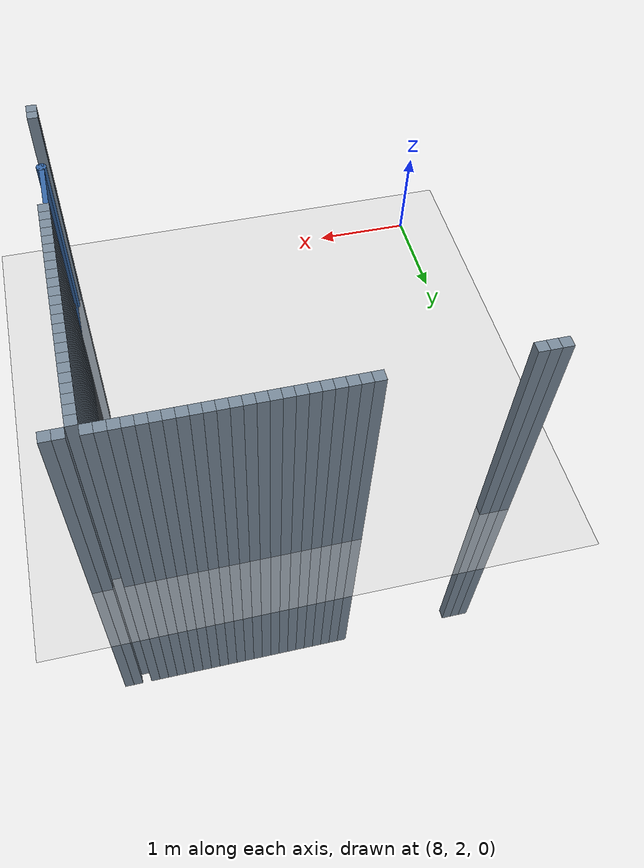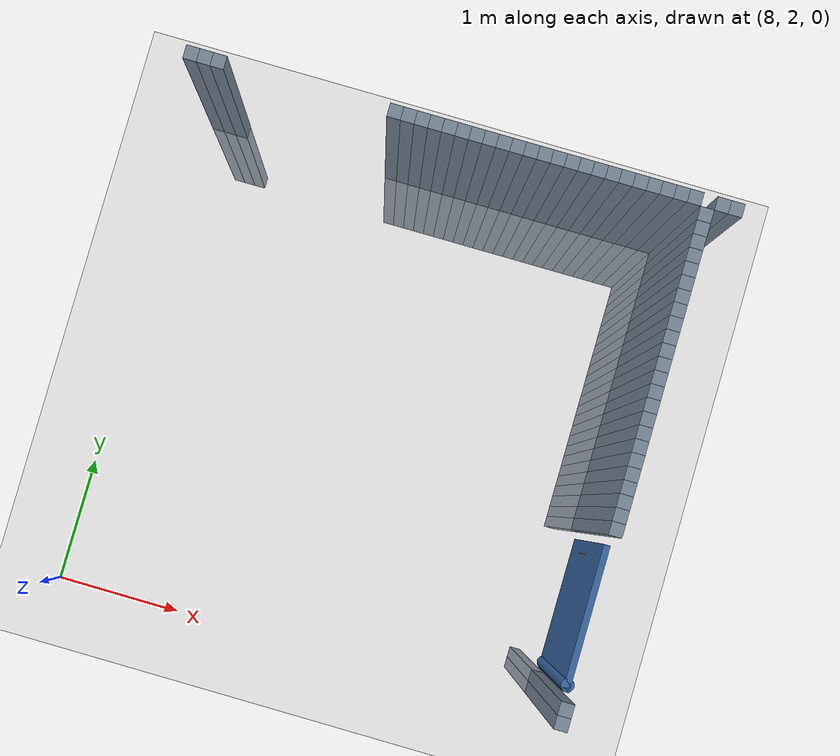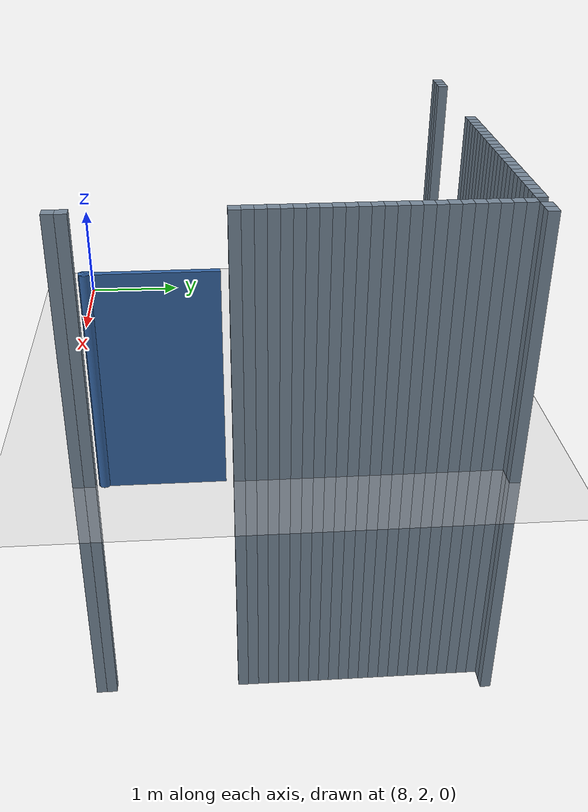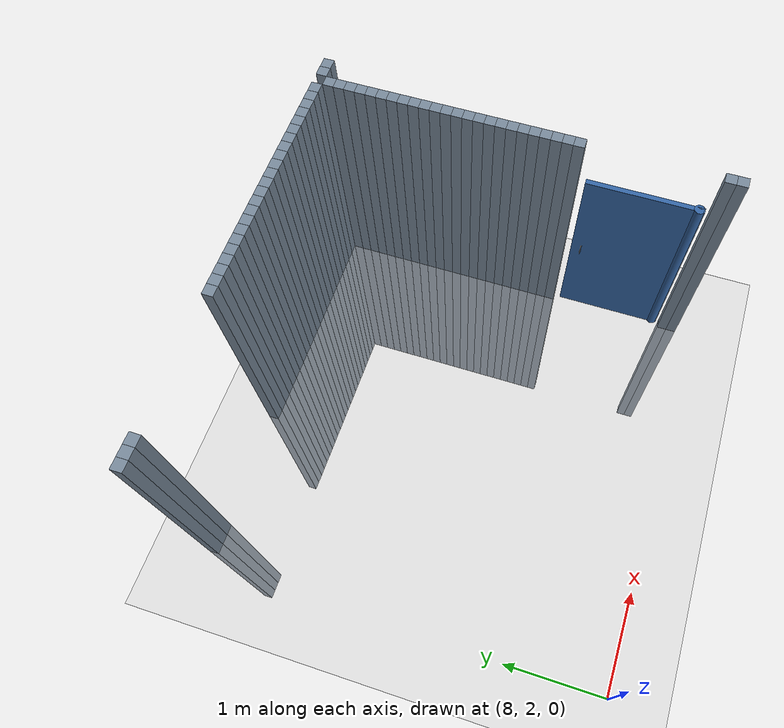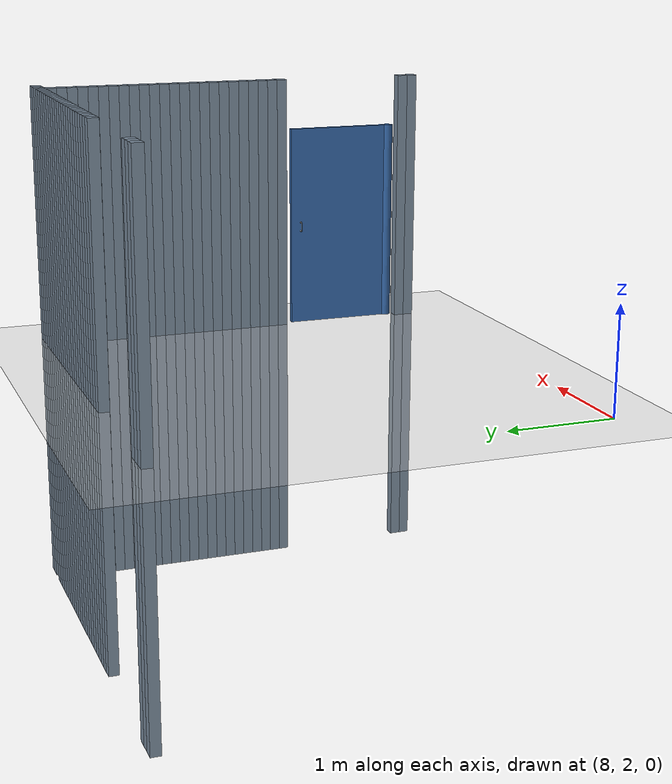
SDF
<sdf version="1.6">
 <world name="default">
  <model name="ground_plane">
   <static>1</static>
   <link name="link">
    <collision name="collision">
     <geometry><plane><normal>0 0 1</normal><size>100 100</size></plane></geometry>
     <surface><friction><ode><mu>100</mu><mu2>50</mu2></ode></friction></surface>
    </collision>
    <visual name="visual">
     <cast_shadows>0</cast_shadows>
     <geometry><plane><normal>0 0 1</normal><size>100 100</size></plane></geometry>
     <material>
      <script><uri>file://media/materials/scripts/gazebo.material</uri><name>Gazebo/Grey</name></script>
     </material>
    </visual>
   </link>
  </model>
  <model name="unit_cylinder_447">
   <static>1</static>
   <pose>8.2 6 0 0 -0 0</pose>
   <link name="link">
    <inertial>
     <mass>1</mass>
     <inertia><ixx>0.145833</ixx><ixy>0</ixy><ixz>0</ixz><iyy>0.145833</iyy><iyz>0</iyz><izz>0.125</izz></inertia>
    </inertial>
    <collision name="collision"><geometry><box><size>0.1 0.1 5</size></box></geometry></collision>
    <visual name="visual">
     <geometry><box><size>0.1 0.1 5</size></box></geometry>
     <material><ambient>0.466667 0.533333 0.6 1</ambient><diffuse>0.466667 0.533333 0.6 1</diffuse></material>
     <material>
      <script><name>Gazebo/Grey</name><uri>file://media/materials/scripts/gazebo.material</uri></script>
     </material>
    </visual>
   </link>
  </model>
  <model name="unit_cylinder_451">
   <static>1</static>
   <pose>8.3 6 0 0 -0 0</pose>
   <link name="link">
    <inertial>
     <mass>1</mass>
     <inertia><ixx>0.145833</ixx><ixy>0</ixy><ixz>0</ixz><iyy>0.145833</iyy><iyz>0</iyz><izz>0.125</izz></inertia>
    </inertial>
    <collision name="collision"><geometry><box><size>0.1 0.1 5</size></box></geometry></collision>
    <visual name="visual">
     <geometry><box><size>0.1 0.1 5</size></box></geometry>
     <material><ambient>0.466667 0.533333 0.6 1</ambient><diffuse>0.466667 0.533333 0.6 1</diffuse></material>
     <material>
      <script><name>Gazebo/Grey</name><uri>file://media/materials/scripts/gazebo.material</uri></script>
     </material>
    </visual>
   </link>
  </model>
  <model name="unit_cylinder_455">
   <static>1</static>
   <pose>8.4 6 0 0 -0 0</pose>
   <link name="link">
    <inertial>
     <mass>1</mass>
     <inertia><ixx>0.145833</ixx><ixy>0</ixy><ixz>0</ixz><iyy>0.145833</iyy><iyz>0</iyz><izz>0.125</izz></inertia>
    </inertial>
    <collision name="collision"><geometry><box><size>0.1 0.1 5</size></box></geometry></collision>
    <visual name="visual">
     <geometry><box><size>0.1 0.1 5</size></box></geometry>
     <material><ambient>0.466667 0.533333 0.6 1</ambient><diffuse>0.466667 0.533333 0.6 1</diffuse></material>
     <material>
      <script><name>Gazebo/Grey</name><uri>file://media/materials/scripts/gazebo.material</uri></script>
     </material>
    </visual>
   </link>
  </model>
  <model name="unit_cylinder_507">
   <static>1</static>
   <pose>9.7 6 0 0 -0 0</pose>
   <link name="link">
    <inertial>
     <mass>1</mass>
     <inertia><ixx>0.145833</ixx><ixy>0</ixy><ixz>0</ixz><iyy>0.145833</iyy><iyz>0</iyz><izz>0.125</izz></inertia>
    </inertial>
    <collision name="collision"><geometry><box><size>0.1 0.1 5</size></box></geometry></collision>
    <visual name="visual">
     <geometry><box><size>0.1 0.1 5</size></box></geometry>
     <material><ambient>0.466667 0.533333 0.6 1</ambient><diffuse>0.466667 0.533333 0.6 1</diffuse></material>
     <material>
      <script><name>Gazebo/Grey</name><uri>file://media/materials/scripts/gazebo.material</uri></script>
     </material>
    </visual>
   </link>
  </model>
  <model name="unit_cylinder_511">
   <static>1</static>
   <pose>9.8 6 0 0 -0 0</pose>
   <link name="link">
    <inertial>
     <mass>1</mass>
     <inertia><ixx>0.145833</ixx><ixy>0</ixy><ixz>0</ixz><iyy>0.145833</iyy><iyz>0</iyz><izz>0.125</izz></inertia>
    </inertial>
    <collision name="collision"><geometry><box><size>0.1 0.1 5</size></box></geometry></collision>
    <visual name="visual">
     <geometry><box><size>0.1 0.1 5</size></box></geometry>
     <material><ambient>0.466667 0.533333 0.6 1</ambient><diffuse>0.466667 0.533333 0.6 1</diffuse></material>
     <material>
      <script><name>Gazebo/Grey</name><uri>file://media/materials/scripts/gazebo.material</uri></script>
     </material>
    </visual>
   </link>
  </model>
  <model name="unit_cylinder_515">
   <static>1</static>
   <pose>9.9 6 0 0 -0 0</pose>
   <link name="link">
    <inertial>
     <mass>1</mass>
     <inertia><ixx>0.145833</ixx><ixy>0</ixy><ixz>0</ixz><iyy>0.145833</iyy><iyz>0</iyz><izz>0.125</izz></inertia>
    </inertial>
    <collision name="collision"><geometry><box><size>0.1 0.1 5</size></box></geometry></collision>
    <visual name="visual">
     <geometry><box><size>0.1 0.1 5</size></box></geometry>
     <material><ambient>0.466667 0.533333 0.6 1</ambient><diffuse>0.466667 0.533333 0.6 1</diffuse></material>
     <material>
      <script><name>Gazebo/Grey</name><uri>file://media/materials/scripts/gazebo.material</uri></script>
     </material>
    </visual>
   </link>
  </model>
  <model name="unit_cylinder_519">
   <static>1</static>
   <pose>10 6 0 0 -0 0</pose>
   <link name="link">
    <inertial>
     <mass>1</mass>
     <inertia><ixx>0.145833</ixx><ixy>0</ixy><ixz>0</ixz><iyy>0.145833</iyy><iyz>0</iyz><izz>0.125</izz></inertia>
    </inertial>
    <collision name="collision"><geometry><box><size>0.1 0.1 5</size></box></geometry></collision>
    <visual name="visual">
     <geometry><box><size>0.1 0.1 5</size></box></geometry>
     <material><ambient>0.466667 0.533333 0.6 1</ambient><diffuse>0.466667 0.533333 0.6 1</diffuse></material>
     <material>
      <script><name>Gazebo/Grey</name><uri>file://media/materials/scripts/gazebo.material</uri></script>
     </material>
    </visual>
   </link>
  </model>
  <model name="unit_cylinder_523">
   <static>1</static>
   <pose>10.1 6 0 0 -0 0</pose>
   <link name="link">
    <inertial>
     <mass>1</mass>
     <inertia><ixx>0.145833</ixx><ixy>0</ixy><ixz>0</ixz><iyy>0.145833</iyy><iyz>0</iyz><izz>0.125</izz></inertia>
    </inertial>
    <collision name="collision"><geometry><box><size>0.1 0.1 5</size></box></geometry></collision>
    <visual name="visual">
     <geometry><box><size>0.1 0.1 5</size></box></geometry>
     <material><ambient>0.466667 0.533333 0.6 1</ambient><diffuse>0.466667 0.533333 0.6 1</diffuse></material>
     <material>
      <script><name>Gazebo/Grey</name><uri>file://media/materials/scripts/gazebo.material</uri></script>
     </material>
    </visual>
   </link>
  </model>
  <model name="unit_cylinder_527">
   <static>1</static>
   <pose>10.2 6 0 0 -0 0</pose>
   <link name="link">
    <inertial>
     <mass>1</mass>
     <inertia><ixx>0.145833</ixx><ixy>0</ixy><ixz>0</ixz><iyy>0.145833</iyy><iyz>0</iyz><izz>0.125</izz></inertia>
    </inertial>
    <collision name="collision"><geometry><box><size>0.1 0.1 5</size></box></geometry></collision>
    <visual name="visual">
     <geometry><box><size>0.1 0.1 5</size></box></geometry>
     <material><ambient>0.466667 0.533333 0.6 1</ambient><diffuse>0.466667 0.533333 0.6 1</diffuse></material>
     <material>
      <script><name>Gazebo/Grey</name><uri>file://media/materials/scripts/gazebo.material</uri></script>
     </material>
    </visual>
   </link>
  </model>
  <model name="unit_cylinder_531">
   <static>1</static>
   <pose>10.3 6 0 0 -0 0</pose>
   <link name="link">
    <inertial>
     <mass>1</mass>
     <inertia><ixx>0.145833</ixx><ixy>0</ixy><ixz>0</ixz><iyy>0.145833</iyy><iyz>0</iyz><izz>0.125</izz></inertia>
    </inertial>
    <collision name="collision"><geometry><box><size>0.1 0.1 5</size></box></geometry></collision>
    <visual name="visual">
     <geometry><box><size>0.1 0.1 5</size></box></geometry>
     <material><ambient>0.466667 0.533333 0.6 1</ambient><diffuse>0.466667 0.533333 0.6 1</diffuse></material>
     <material>
      <script><name>Gazebo/Grey</name><uri>file://media/materials/scripts/gazebo.material</uri></script>
     </material>
    </visual>
   </link>
  </model>
  <model name="unit_cylinder_535">
   <static>1</static>
   <pose>10.4 6 0 0 -0 0</pose>
   <link name="link">
    <inertial>
     <mass>1</mass>
     <inertia><ixx>0.145833</ixx><ixy>0</ixy><ixz>0</ixz><iyy>0.145833</iyy><iyz>0</iyz><izz>0.125</izz></inertia>
    </inertial>
    <collision name="collision"><geometry><box><size>0.1 0.1 5</size></box></geometry></collision>
    <visual name="visual">
     <geometry><box><size>0.1 0.1 5</size></box></geometry>
     <material><ambient>0.466667 0.533333 0.6 1</ambient><diffuse>0.466667 0.533333 0.6 1</diffuse></material>
     <material>
      <script><name>Gazebo/Grey</name><uri>file://media/materials/scripts/gazebo.material</uri></script>
     </material>
    </visual>
   </link>
  </model>
  <model name="unit_cylinder_539">
   <static>1</static>
   <pose>10.5 6 0 0 -0 0</pose>
   <link name="link">
    <inertial>
     <mass>1</mass>
     <inertia><ixx>0.145833</ixx><ixy>0</ixy><ixz>0</ixz><iyy>0.145833</iyy><iyz>0</iyz><izz>0.125</izz></inertia>
    </inertial>
    <collision name="collision"><geometry><box><size>0.1 0.1 5</size></box></geometry></collision>
    <visual name="visual">
     <geometry><box><size>0.1 0.1 5</size></box></geometry>
     <material><ambient>0.466667 0.533333 0.6 1</ambient><diffuse>0.466667 0.533333 0.6 1</diffuse></material>
     <material>
      <script><name>Gazebo/Grey</name><uri>file://media/materials/scripts/gazebo.material</uri></script>
     </material>
    </visual>
   </link>
  </model>
  <model name="unit_cylinder_543">
   <static>1</static>
   <pose>10.6 6 0 0 -0 0</pose>
   <link name="link">
    <inertial>
     <mass>1</mass>
     <inertia><ixx>0.145833</ixx><ixy>0</ixy><ixz>0</ixz><iyy>0.145833</iyy><iyz>0</iyz><izz>0.125</izz></inertia>
    </inertial>
    <collision name="collision"><geometry><box><size>0.1 0.1 5</size></box></geometry></collision>
    <visual name="visual">
     <geometry><box><size>0.1 0.1 5</size></box></geometry>
     <material><ambient>0.466667 0.533333 0.6 1</ambient><diffuse>0.466667 0.533333 0.6 1</diffuse></material>
     <material>
      <script><name>Gazebo/Grey</name><uri>file://media/materials/scripts/gazebo.material</uri></script>
     </material>
    </visual>
   </link>
  </model>
  <model name="unit_cylinder_547">
   <static>1</static>
   <pose>10.7 6 0 0 -0 0</pose>
   <link name="link">
    <inertial>
     <mass>1</mass>
     <inertia><ixx>0.145833</ixx><ixy>0</ixy><ixz>0</ixz><iyy>0.145833</iyy><iyz>0</iyz><izz>0.125</izz></inertia>
    </inertial>
    <collision name="collision"><geometry><box><size>0.1 0.1 5</size></box></geometry></collision>
    <visual name="visual">
     <geometry><box><size>0.1 0.1 5</size></box></geometry>
     <material><ambient>0.466667 0.533333 0.6 1</ambient><diffuse>0.466667 0.533333 0.6 1</diffuse></material>
     <material>
      <script><name>Gazebo/Grey</name><uri>file://media/materials/scripts/gazebo.material</uri></script>
     </material>
    </visual>
   </link>
  </model>
  <model name="unit_cylinder_551">
   <static>1</static>
   <pose>10.8 6 0 0 -0 0</pose>
   <link name="link">
    <inertial>
     <mass>1</mass>
     <inertia><ixx>0.145833</ixx><ixy>0</ixy><ixz>0</ixz><iyy>0.145833</iyy><iyz>0</iyz><izz>0.125</izz></inertia>
    </inertial>
    <collision name="collision"><geometry><box><size>0.1 0.1 5</size></box></geometry></collision>
    <visual name="visual">
     <geometry><box><size>0.1 0.1 5</size></box></geometry>
     <material><ambient>0.466667 0.533333 0.6 1</ambient><diffuse>0.466667 0.533333 0.6 1</diffuse></material>
     <material>
      <script><name>Gazebo/Grey</name><uri>file://media/materials/scripts/gazebo.material</uri></script>
     </material>
    </visual>
   </link>
  </model>
  <model name="unit_cylinder_555">
   <static>1</static>
   <pose>10.9 6 0 0 -0 0</pose>
   <link name="link">
    <inertial>
     <mass>1</mass>
     <inertia><ixx>0.145833</ixx><ixy>0</ixy><ixz>0</ixz><iyy>0.145833</iyy><iyz>0</iyz><izz>0.125</izz></inertia>
    </inertial>
    <collision name="collision"><geometry><box><size>0.1 0.1 5</size></box></geometry></collision>
    <visual name="visual">
     <geometry><box><size>0.1 0.1 5</size></box></geometry>
     <material><ambient>0.466667 0.533333 0.6 1</ambient><diffuse>0.466667 0.533333 0.6 1</diffuse></material>
     <material>
      <script><name>Gazebo/Grey</name><uri>file://media/materials/scripts/gazebo.material</uri></script>
     </material>
    </visual>
   </link>
  </model>
  <model name="unit_cylinder_559">
   <static>1</static>
   <pose>11 6 0 0 -0 0</pose>
   <link name="link">
    <inertial>
     <mass>1</mass>
     <inertia><ixx>0.145833</ixx><ixy>0</ixy><ixz>0</ixz><iyy>0.145833</iyy><iyz>0</iyz><izz>0.125</izz></inertia>
    </inertial>
    <collision name="collision"><geometry><box><size>0.1 0.1 5</size></box></geometry></collision>
    <visual name="visual">
     <geometry><box><size>0.1 0.1 5</size></box></geometry>
     <material><ambient>0.466667 0.533333 0.6 1</ambient><diffuse>0.466667 0.533333 0.6 1</diffuse></material>
     <material>
      <script><name>Gazebo/Grey</name><uri>file://media/materials/scripts/gazebo.material</uri></script>
     </material>
    </visual>
   </link>
  </model>
  <model name="unit_cylinder_563">
   <static>1</static>
   <pose>11.1 6 0 0 -0 0</pose>
   <link name="link">
    <inertial>
     <mass>1</mass>
     <inertia><ixx>0.145833</ixx><ixy>0</ixy><ixz>0</ixz><iyy>0.145833</iyy><iyz>0</iyz><izz>0.125</izz></inertia>
    </inertial>
    <collision name="collision"><geometry><box><size>0.1 0.1 5</size></box></geometry></collision>
    <visual name="visual">
     <geometry><box><size>0.1 0.1 5</size></box></geometry>
     <material><ambient>0.466667 0.533333 0.6 1</ambient><diffuse>0.466667 0.533333 0.6 1</diffuse></material>
     <material>
      <script><name>Gazebo/Grey</name><uri>file://media/materials/scripts/gazebo.material</uri></script>
     </material>
    </visual>
   </link>
  </model>
  <model name="unit_cylinder_567">
   <static>1</static>
   <pose>11.2 6 0 0 -0 0</pose>
   <link name="link">
    <inertial>
     <mass>1</mass>
     <inertia><ixx>0.145833</ixx><ixy>0</ixy><ixz>0</ixz><iyy>0.145833</iyy><iyz>0</iyz><izz>0.125</izz></inertia>
    </inertial>
    <collision name="collision"><geometry><box><size>0.1 0.1 5</size></box></geometry></collision>
    <visual name="visual">
     <geometry><box><size>0.1 0.1 5</size></box></geometry>
     <material><ambient>0.466667 0.533333 0.6 1</ambient><diffuse>0.466667 0.533333 0.6 1</diffuse></material>
     <material>
      <script><name>Gazebo/Grey</name><uri>file://media/materials/scripts/gazebo.material</uri></script>
     </material>
    </visual>
   </link>
  </model>
  <model name="unit_cylinder_571">
   <static>1</static>
   <pose>11.3 6 0 0 -0 0</pose>
   <link name="link">
    <inertial>
     <mass>1</mass>
     <inertia><ixx>0.145833</ixx><ixy>0</ixy><ixz>0</ixz><iyy>0.145833</iyy><iyz>0</iyz><izz>0.125</izz></inertia>
    </inertial>
    <collision name="collision"><geometry><box><size>0.1 0.1 5</size></box></geometry></collision>
    <visual name="visual">
     <geometry><box><size>0.1 0.1 5</size></box></geometry>
     <material><ambient>0.466667 0.533333 0.6 1</ambient><diffuse>0.466667 0.533333 0.6 1</diffuse></material>
     <material>
      <script><name>Gazebo/Grey</name><uri>file://media/materials/scripts/gazebo.material</uri></script>
     </material>
    </visual>
   </link>
  </model>
  <model name="unit_cylinder_575">
   <static>1</static>
   <pose>11.4 6 0 0 -0 0</pose>
   <link name="link">
    <inertial>
     <mass>1</mass>
     <inertia><ixx>0.145833</ixx><ixy>0</ixy><ixz>0</ixz><iyy>0.145833</iyy><iyz>0</iyz><izz>0.125</izz></inertia>
    </inertial>
    <collision name="collision"><geometry><box><size>0.1 0.1 5</size></box></geometry></collision>
    <visual name="visual">
     <geometry><box><size>0.1 0.1 5</size></box></geometry>
     <material><ambient>0.466667 0.533333 0.6 1</ambient><diffuse>0.466667 0.533333 0.6 1</diffuse></material>
     <material>
      <script><name>Gazebo/Grey</name><uri>file://media/materials/scripts/gazebo.material</uri></script>
     </material>
    </visual>
   </link>
  </model>
  <model name="unit_cylinder_579">
   <static>1</static>
   <pose>11.5 6 0 0 -0 0</pose>
   <link name="link">
    <inertial>
     <mass>1</mass>
     <inertia><ixx>0.145833</ixx><ixy>0</ixy><ixz>0</ixz><iyy>0.145833</iyy><iyz>0</iyz><izz>0.125</izz></inertia>
    </inertial>
    <collision name="collision"><geometry><box><size>0.1 0.1 5</size></box></geometry></collision>
    <visual name="visual">
     <geometry><box><size>0.1 0.1 5</size></box></geometry>
     <material><ambient>0.466667 0.533333 0.6 1</ambient><diffuse>0.466667 0.533333 0.6 1</diffuse></material>
     <material>
      <script><name>Gazebo/Grey</name><uri>file://media/materials/scripts/gazebo.material</uri></script>
     </material>
    </visual>
   </link>
  </model>
  <model name="unit_cylinder_583">
   <static>1</static>
   <pose>11.6 6 0 0 -0 0</pose>
   <link name="link">
    <inertial>
     <mass>1</mass>
     <inertia><ixx>0.145833</ixx><ixy>0</ixy><ixz>0</ixz><iyy>0.145833</iyy><iyz>0</iyz><izz>0.125</izz></inertia>
    </inertial>
    <collision name="collision"><geometry><box><size>0.1 0.1 5</size></box></geometry></collision>
    <visual name="visual">
     <geometry><box><size>0.1 0.1 5</size></box></geometry>
     <material><ambient>0.466667 0.533333 0.6 1</ambient><diffuse>0.466667 0.533333 0.6 1</diffuse></material>
     <material>
      <script><name>Gazebo/Grey</name><uri>file://media/materials/scripts/gazebo.material</uri></script>
     </material>
    </visual>
   </link>
  </model>
  <model name="unit_cylinder_587">
   <static>1</static>
   <pose>11.7 6 0 0 -0 0</pose>
   <link name="link">
    <inertial>
     <mass>1</mass>
     <inertia><ixx>0.145833</ixx><ixy>0</ixy><ixz>0</ixz><iyy>0.145833</iyy><iyz>0</iyz><izz>0.125</izz></inertia>
    </inertial>
    <collision name="collision"><geometry><box><size>0.1 0.1 5</size></box></geometry></collision>
    <visual name="visual">
     <geometry><box><size>0.1 0.1 5</size></box></geometry>
     <material><ambient>0.466667 0.533333 0.6 1</ambient><diffuse>0.466667 0.533333 0.6 1</diffuse></material>
     <material>
      <script><name>Gazebo/Grey</name><uri>file://media/materials/scripts/gazebo.material</uri></script>
     </material>
    </visual>
   </link>
  </model>
  <model name="unit_cylinder_591">
   <static>1</static>
   <pose>11.8 6 0 0 -0 0</pose>
   <link name="link">
    <inertial>
     <mass>1</mass>
     <inertia><ixx>0.145833</ixx><ixy>0</ixy><ixz>0</ixz><iyy>0.145833</iyy><iyz>0</iyz><izz>0.125</izz></inertia>
    </inertial>
    <collision name="collision"><geometry><box><size>0.1 0.1 5</size></box></geometry></collision>
    <visual name="visual">
     <geometry><box><size>0.1 0.1 5</size></box></geometry>
     <material><ambient>0.466667 0.533333 0.6 1</ambient><diffuse>0.466667 0.533333 0.6 1</diffuse></material>
     <material>
      <script><name>Gazebo/Grey</name><uri>file://media/materials/scripts/gazebo.material</uri></script>
     </material>
    </visual>
   </link>
  </model>
  <model name="unit_cylinder_595">
   <static>1</static>
   <pose>11.9 6 0 0 -0 0</pose>
   <link name="link">
    <inertial>
     <mass>1</mass>
     <inertia><ixx>0.145833</ixx><ixy>0</ixy><ixz>0</ixz><iyy>0.145833</iyy><iyz>0</iyz><izz>0.125</izz></inertia>
    </inertial>
    <collision name="collision"><geometry><box><size>0.1 0.1 5</size></box></geometry></collision>
    <visual name="visual">
     <geometry><box><size>0.1 0.1 5</size></box></geometry>
     <material><ambient>0.466667 0.533333 0.6 1</ambient><diffuse>0.466667 0.533333 0.6 1</diffuse></material>
     <material>
      <script><name>Gazebo/Grey</name><uri>file://media/materials/scripts/gazebo.material</uri></script>
     </material>
    </visual>
   </link>
  </model>
  <model name="unit_cylinder_620">
   <static>1</static>
   <pose>12 2.2 0 0 -0 0</pose>
   <link name="link">
    <inertial>
     <mass>1</mass>
     <inertia><ixx>0.145833</ixx><ixy>0</ixy><ixz>0</ixz><iyy>0.145833</iyy><iyz>0</iyz><izz>0.125</izz></inertia>
    </inertial>
    <collision name="collision"><geometry><box><size>0.1 0.1 5</size></box></geometry></collision>
    <visual name="visual">
     <geometry><box><size>0.1 0.1 5</size></box></geometry>
     <material><ambient>0.466667 0.533333 0.6 1</ambient><diffuse>0.466667 0.533333 0.6 1</diffuse></material>
     <material>
      <script><name>Gazebo/Grey</name><uri>file://media/materials/scripts/gazebo.material</uri></script>
     </material>
    </visual>
   </link>
  </model>
  <model name="unit_cylinder_621">
   <static>1</static>
   <pose>12 2.3 0 0 -0 0</pose>
   <link name="link">
    <inertial>
     <mass>1</mass>
     <inertia><ixx>0.145833</ixx><ixy>0</ixy><ixz>0</ixz><iyy>0.145833</iyy><iyz>0</iyz><izz>0.125</izz></inertia>
    </inertial>
    <collision name="collision"><geometry><box><size>0.1 0.1 5</size></box></geometry></collision>
    <visual name="visual">
     <geometry><box><size>0.1 0.1 5</size></box></geometry>
     <material><ambient>0.466667 0.533333 0.6 1</ambient><diffuse>0.466667 0.533333 0.6 1</diffuse></material>
     <material>
      <script><name>Gazebo/Grey</name><uri>file://media/materials/scripts/gazebo.material</uri></script>
     </material>
    </visual>
   </link>
  </model>
  <model name="unit_cylinder_634">
   <static>1</static>
   <pose>12 3.6 0 0 -0 0</pose>
   <link name="link">
    <inertial>
     <mass>1</mass>
     <inertia><ixx>0.145833</ixx><ixy>0</ixy><ixz>0</ixz><iyy>0.145833</iyy><iyz>0</iyz><izz>0.125</izz></inertia>
    </inertial>
    <collision name="collision"><geometry><box><size>0.1 0.1 5</size></box></geometry></collision>
    <visual name="visual">
     <geometry><box><size>0.1 0.1 5</size></box></geometry>
     <material><ambient>0.466667 0.533333 0.6 1</ambient><diffuse>0.466667 0.533333 0.6 1</diffuse></material>
     <material>
      <script><name>Gazebo/Grey</name><uri>file://media/materials/scripts/gazebo.material</uri></script>
     </material>
    </visual>
   </link>
  </model>
  <model name="unit_cylinder_635">
   <static>1</static>
   <pose>12 3.7 0 0 -0 0</pose>
   <link name="link">
    <inertial>
     <mass>1</mass>
     <inertia><ixx>0.145833</ixx><ixy>0</ixy><ixz>0</ixz><iyy>0.145833</iyy><iyz>0</iyz><izz>0.125</izz></inertia>
    </inertial>
    <collision name="collision"><geometry><box><size>0.1 0.1 5</size></box></geometry></collision>
    <visual name="visual">
     <geometry><box><size>0.1 0.1 5</size></box></geometry>
     <material><ambient>0.466667 0.533333 0.6 1</ambient><diffuse>0.466667 0.533333 0.6 1</diffuse></material>
     <material>
      <script><name>Gazebo/Grey</name><uri>file://media/materials/scripts/gazebo.material</uri></script>
     </material>
    </visual>
   </link>
  </model>
  <model name="unit_cylinder_636">
   <static>1</static>
   <pose>12 3.8 0 0 -0 0</pose>
   <link name="link">
    <inertial>
     <mass>1</mass>
     <inertia><ixx>0.145833</ixx><ixy>0</ixy><ixz>0</ixz><iyy>0.145833</iyy><iyz>0</iyz><izz>0.125</izz></inertia>
    </inertial>
    <collision name="collision"><geometry><box><size>0.1 0.1 5</size></box></geometry></collision>
    <visual name="visual">
     <geometry><box><size>0.1 0.1 5</size></box></geometry>
     <material><ambient>0.466667 0.533333 0.6 1</ambient><diffuse>0.466667 0.533333 0.6 1</diffuse></material>
     <material>
      <script><name>Gazebo/Grey</name><uri>file://media/materials/scripts/gazebo.material</uri></script>
     </material>
    </visual>
   </link>
  </model>
  <model name="unit_cylinder_637">
   <static>1</static>
   <pose>12 3.9 0 0 -0 0</pose>
   <link name="link">
    <inertial>
     <mass>1</mass>
     <inertia><ixx>0.145833</ixx><ixy>0</ixy><ixz>0</ixz><iyy>0.145833</iyy><iyz>0</iyz><izz>0.125</izz></inertia>
    </inertial>
    <collision name="collision"><geometry><box><size>0.1 0.1 5</size></box></geometry></collision>
    <visual name="visual">
     <geometry><box><size>0.1 0.1 5</size></box></geometry>
     <material><ambient>0.466667 0.533333 0.6 1</ambient><diffuse>0.466667 0.533333 0.6 1</diffuse></material>
     <material>
      <script><name>Gazebo/Grey</name><uri>file://media/materials/scripts/gazebo.material</uri></script>
     </material>
    </visual>
   </link>
  </model>
  <model name="unit_cylinder_638">
   <static>1</static>
   <pose>12 4 0 0 -0 0</pose>
   <link name="link">
    <inertial>
     <mass>1</mass>
     <inertia><ixx>0.145833</ixx><ixy>0</ixy><ixz>0</ixz><iyy>0.145833</iyy><iyz>0</iyz><izz>0.125</izz></inertia>
    </inertial>
    <collision name="collision"><geometry><box><size>0.1 0.1 5</size></box></geometry></collision>
    <visual name="visual">
     <geometry><box><size>0.1 0.1 5</size></box></geometry>
     <material><ambient>0.466667 0.533333 0.6 1</ambient><diffuse>0.466667 0.533333 0.6 1</diffuse></material>
     <material>
      <script><name>Gazebo/Grey</name><uri>file://media/materials/scripts/gazebo.material</uri></script>
     </material>
    </visual>
   </link>
  </model>
  <model name="unit_cylinder_639">
   <static>1</static>
   <pose>12 4.1 0 0 -0 0</pose>
   <link name="link">
    <inertial>
     <mass>1</mass>
     <inertia><ixx>0.145833</ixx><ixy>0</ixy><ixz>0</ixz><iyy>0.145833</iyy><iyz>0</iyz><izz>0.125</izz></inertia>
    </inertial>
    <collision name="collision"><geometry><box><size>0.1 0.1 5</size></box></geometry></collision>
    <visual name="visual">
     <geometry><box><size>0.1 0.1 5</size></box></geometry>
     <material><ambient>0.466667 0.533333 0.6 1</ambient><diffuse>0.466667 0.533333 0.6 1</diffuse></material>
     <material>
      <script><name>Gazebo/Grey</name><uri>file://media/materials/scripts/gazebo.material</uri></script>
     </material>
    </visual>
   </link>
  </model>
  <model name="unit_cylinder_640">
   <static>1</static>
   <pose>12 4.2 0 0 -0 0</pose>
   <link name="link">
    <inertial>
     <mass>1</mass>
     <inertia><ixx>0.145833</ixx><ixy>0</ixy><ixz>0</ixz><iyy>0.145833</iyy><iyz>0</iyz><izz>0.125</izz></inertia>
    </inertial>
    <collision name="collision"><geometry><box><size>0.1 0.1 5</size></box></geometry></collision>
    <visual name="visual">
     <geometry><box><size>0.1 0.1 5</size></box></geometry>
     <material><ambient>0.466667 0.533333 0.6 1</ambient><diffuse>0.466667 0.533333 0.6 1</diffuse></material>
     <material>
      <script><name>Gazebo/Grey</name><uri>file://media/materials/scripts/gazebo.material</uri></script>
     </material>
    </visual>
   </link>
  </model>
  <model name="unit_cylinder_641">
   <static>1</static>
   <pose>12 4.3 0 0 -0 0</pose>
   <link name="link">
    <inertial>
     <mass>1</mass>
     <inertia><ixx>0.145833</ixx><ixy>0</ixy><ixz>0</ixz><iyy>0.145833</iyy><iyz>0</iyz><izz>0.125</izz></inertia>
    </inertial>
    <collision name="collision"><geometry><box><size>0.1 0.1 5</size></box></geometry></collision>
    <visual name="visual">
     <geometry><box><size>0.1 0.1 5</size></box></geometry>
     <material><ambient>0.466667 0.533333 0.6 1</ambient><diffuse>0.466667 0.533333 0.6 1</diffuse></material>
     <material>
      <script><name>Gazebo/Grey</name><uri>file://media/materials/scripts/gazebo.material</uri></script>
     </material>
    </visual>
   </link>
  </model>
  <model name="unit_cylinder_642">
   <static>1</static>
   <pose>12 4.4 0 0 -0 0</pose>
   <link name="link">
    <inertial>
     <mass>1</mass>
     <inertia><ixx>0.145833</ixx><ixy>0</ixy><ixz>0</ixz><iyy>0.145833</iyy><iyz>0</iyz><izz>0.125</izz></inertia>
    </inertial>
    <collision name="collision"><geometry><box><size>0.1 0.1 5</size></box></geometry></collision>
    <visual name="visual">
     <geometry><box><size>0.1 0.1 5</size></box></geometry>
     <material><ambient>0.466667 0.533333 0.6 1</ambient><diffuse>0.466667 0.533333 0.6 1</diffuse></material>
     <material>
      <script><name>Gazebo/Grey</name><uri>file://media/materials/scripts/gazebo.material</uri></script>
     </material>
    </visual>
   </link>
  </model>
  <model name="unit_cylinder_643">
   <static>1</static>
   <pose>12 4.5 0 0 -0 0</pose>
   <link name="link">
    <inertial>
     <mass>1</mass>
     <inertia><ixx>0.145833</ixx><ixy>0</ixy><ixz>0</ixz><iyy>0.145833</iyy><iyz>0</iyz><izz>0.125</izz></inertia>
    </inertial>
    <collision name="collision"><geometry><box><size>0.1 0.1 5</size></box></geometry></collision>
    <visual name="visual">
     <geometry><box><size>0.1 0.1 5</size></box></geometry>
     <material><ambient>0.466667 0.533333 0.6 1</ambient><diffuse>0.466667 0.533333 0.6 1</diffuse></material>
     <material>
      <script><name>Gazebo/Grey</name><uri>file://media/materials/scripts/gazebo.material</uri></script>
     </material>
    </visual>
   </link>
  </model>
  <model name="unit_cylinder_644">
   <static>1</static>
   <pose>12 4.6 0 0 -0 0</pose>
   <link name="link">
    <inertial>
     <mass>1</mass>
     <inertia><ixx>0.145833</ixx><ixy>0</ixy><ixz>0</ixz><iyy>0.145833</iyy><iyz>0</iyz><izz>0.125</izz></inertia>
    </inertial>
    <collision name="collision"><geometry><box><size>0.1 0.1 5</size></box></geometry></collision>
    <visual name="visual">
     <geometry><box><size>0.1 0.1 5</size></box></geometry>
     <material><ambient>0.466667 0.533333 0.6 1</ambient><diffuse>0.466667 0.533333 0.6 1</diffuse></material>
     <material>
      <script><name>Gazebo/Grey</name><uri>file://media/materials/scripts/gazebo.material</uri></script>
     </material>
    </visual>
   </link>
  </model>
  <model name="unit_cylinder_645">
   <static>1</static>
   <pose>12 4.7 0 0 -0 0</pose>
   <link name="link">
    <inertial>
     <mass>1</mass>
     <inertia><ixx>0.145833</ixx><ixy>0</ixy><ixz>0</ixz><iyy>0.145833</iyy><iyz>0</iyz><izz>0.125</izz></inertia>
    </inertial>
    <collision name="collision"><geometry><box><size>0.1 0.1 5</size></box></geometry></collision>
    <visual name="visual">
     <geometry><box><size>0.1 0.1 5</size></box></geometry>
     <material><ambient>0.466667 0.533333 0.6 1</ambient><diffuse>0.466667 0.533333 0.6 1</diffuse></material>
     <material>
      <script><name>Gazebo/Grey</name><uri>file://media/materials/scripts/gazebo.material</uri></script>
     </material>
    </visual>
   </link>
  </model>
  <model name="unit_cylinder_646">
   <static>1</static>
   <pose>12 4.8 0 0 -0 0</pose>
   <link name="link">
    <inertial>
     <mass>1</mass>
     <inertia><ixx>0.145833</ixx><ixy>0</ixy><ixz>0</ixz><iyy>0.145833</iyy><iyz>0</iyz><izz>0.125</izz></inertia>
    </inertial>
    <collision name="collision"><geometry><box><size>0.1 0.1 5</size></box></geometry></collision>
    <visual name="visual">
     <geometry><box><size>0.1 0.1 5</size></box></geometry>
     <material><ambient>0.466667 0.533333 0.6 1</ambient><diffuse>0.466667 0.533333 0.6 1</diffuse></material>
     <material>
      <script><name>Gazebo/Grey</name><uri>file://media/materials/scripts/gazebo.material</uri></script>
     </material>
    </visual>
   </link>
  </model>
  <model name="unit_cylinder_647">
   <static>1</static>
   <pose>12 4.9 0 0 -0 0</pose>
   <link name="link">
    <inertial>
     <mass>1</mass>
     <inertia><ixx>0.145833</ixx><ixy>0</ixy><ixz>0</ixz><iyy>0.145833</iyy><iyz>0</iyz><izz>0.125</izz></inertia>
    </inertial>
    <collision name="collision"><geometry><box><size>0.1 0.1 5</size></box></geometry></collision>
    <visual name="visual">
     <geometry><box><size>0.1 0.1 5</size></box></geometry>
     <material><ambient>0.466667 0.533333 0.6 1</ambient><diffuse>0.466667 0.533333 0.6 1</diffuse></material>
     <material>
      <script><name>Gazebo/Grey</name><uri>file://media/materials/scripts/gazebo.material</uri></script>
     </material>
    </visual>
   </link>
  </model>
  <model name="unit_cylinder_648">
   <static>1</static>
   <pose>12 5 0 0 -0 0</pose>
   <link name="link">
    <inertial>
     <mass>1</mass>
     <inertia><ixx>0.145833</ixx><ixy>0</ixy><ixz>0</ixz><iyy>0.145833</iyy><iyz>0</iyz><izz>0.125</izz></inertia>
    </inertial>
    <collision name="collision"><geometry><box><size>0.1 0.1 5</size></box></geometry></collision>
    <visual name="visual">
     <geometry><box><size>0.1 0.1 5</size></box></geometry>
     <material><ambient>0.466667 0.533333 0.6 1</ambient><diffuse>0.466667 0.533333 0.6 1</diffuse></material>
     <material>
      <script><name>Gazebo/Grey</name><uri>file://media/materials/scripts/gazebo.material</uri></script>
     </material>
    </visual>
   </link>
  </model>
  <model name="unit_cylinder_649">
   <static>1</static>
   <pose>12 5.1 0 0 -0 0</pose>
   <link name="link">
    <inertial>
     <mass>1</mass>
     <inertia><ixx>0.145833</ixx><ixy>0</ixy><ixz>0</ixz><iyy>0.145833</iyy><iyz>0</iyz><izz>0.125</izz></inertia>
    </inertial>
    <collision name="collision"><geometry><box><size>0.1 0.1 5</size></box></geometry></collision>
    <visual name="visual">
     <geometry><box><size>0.1 0.1 5</size></box></geometry>
     <material><ambient>0.466667 0.533333 0.6 1</ambient><diffuse>0.466667 0.533333 0.6 1</diffuse></material>
     <material>
      <script><name>Gazebo/Grey</name><uri>file://media/materials/scripts/gazebo.material</uri></script>
     </material>
    </visual>
   </link>
  </model>
  <model name="unit_cylinder_650">
   <static>1</static>
   <pose>12 5.2 0 0 -0 0</pose>
   <link name="link">
    <inertial>
     <mass>1</mass>
     <inertia><ixx>0.145833</ixx><ixy>0</ixy><ixz>0</ixz><iyy>0.145833</iyy><iyz>0</iyz><izz>0.125</izz></inertia>
    </inertial>
    <collision name="collision"><geometry><box><size>0.1 0.1 5</size></box></geometry></collision>
    <visual name="visual">
     <geometry><box><size>0.1 0.1 5</size></box></geometry>
     <material><ambient>0.466667 0.533333 0.6 1</ambient><diffuse>0.466667 0.533333 0.6 1</diffuse></material>
     <material>
      <script><name>Gazebo/Grey</name><uri>file://media/materials/scripts/gazebo.material</uri></script>
     </material>
    </visual>
   </link>
  </model>
  <model name="unit_cylinder_651">
   <static>1</static>
   <pose>12 5.3 0 0 -0 0</pose>
   <link name="link">
    <inertial>
     <mass>1</mass>
     <inertia><ixx>0.145833</ixx><ixy>0</ixy><ixz>0</ixz><iyy>0.145833</iyy><iyz>0</iyz><izz>0.125</izz></inertia>
    </inertial>
    <collision name="collision"><geometry><box><size>0.1 0.1 5</size></box></geometry></collision>
    <visual name="visual">
     <geometry><box><size>0.1 0.1 5</size></box></geometry>
     <material><ambient>0.466667 0.533333 0.6 1</ambient><diffuse>0.466667 0.533333 0.6 1</diffuse></material>
     <material>
      <script><name>Gazebo/Grey</name><uri>file://media/materials/scripts/gazebo.material</uri></script>
     </material>
    </visual>
   </link>
  </model>
  <model name="unit_cylinder_652">
   <static>1</static>
   <pose>12 5.4 0 0 -0 0</pose>
   <link name="link">
    <inertial>
     <mass>1</mass>
     <inertia><ixx>0.145833</ixx><ixy>0</ixy><ixz>0</ixz><iyy>0.145833</iyy><iyz>0</iyz><izz>0.125</izz></inertia>
    </inertial>
    <collision name="collision"><geometry><box><size>0.1 0.1 5</size></box></geometry></collision>
    <visual name="visual">
     <geometry><box><size>0.1 0.1 5</size></box></geometry>
     <material><ambient>0.466667 0.533333 0.6 1</ambient><diffuse>0.466667 0.533333 0.6 1</diffuse></material>
     <material>
      <script><name>Gazebo/Grey</name><uri>file://media/materials/scripts/gazebo.material</uri></script>
     </material>
    </visual>
   </link>
  </model>
  <model name="unit_cylinder_653">
   <static>1</static>
   <pose>12 5.5 0 0 -0 0</pose>
   <link name="link">
    <inertial>
     <mass>1</mass>
     <inertia><ixx>0.145833</ixx><ixy>0</ixy><ixz>0</ixz><iyy>0.145833</iyy><iyz>0</iyz><izz>0.125</izz></inertia>
    </inertial>
    <collision name="collision"><geometry><box><size>0.1 0.1 5</size></box></geometry></collision>
    <visual name="visual">
     <geometry><box><size>0.1 0.1 5</size></box></geometry>
     <material><ambient>0.466667 0.533333 0.6 1</ambient><diffuse>0.466667 0.533333 0.6 1</diffuse></material>
     <material>
      <script><name>Gazebo/Grey</name><uri>file://media/materials/scripts/gazebo.material</uri></script>
     </material>
    </visual>
   </link>
  </model>
  <model name="unit_cylinder_654">
   <static>1</static>
   <pose>12 5.6 0 0 -0 0</pose>
   <link name="link">
    <inertial>
     <mass>1</mass>
     <inertia><ixx>0.145833</ixx><ixy>0</ixy><ixz>0</ixz><iyy>0.145833</iyy><iyz>0</iyz><izz>0.125</izz></inertia>
    </inertial>
    <collision name="collision"><geometry><box><size>0.1 0.1 5</size></box></geometry></collision>
    <visual name="visual">
     <geometry><box><size>0.1 0.1 5</size></box></geometry>
     <material><ambient>0.466667 0.533333 0.6 1</ambient><diffuse>0.466667 0.533333 0.6 1</diffuse></material>
     <material>
      <script><name>Gazebo/Grey</name><uri>file://media/materials/scripts/gazebo.material</uri></script>
     </material>
    </visual>
   </link>
  </model>
  <model name="unit_cylinder_655">
   <static>1</static>
   <pose>12 5.7 0 0 -0 0</pose>
   <link name="link">
    <inertial>
     <mass>1</mass>
     <inertia><ixx>0.145833</ixx><ixy>0</ixy><ixz>0</ixz><iyy>0.145833</iyy><iyz>0</iyz><izz>0.125</izz></inertia>
    </inertial>
    <collision name="collision"><geometry><box><size>0.1 0.1 5</size></box></geometry></collision>
    <visual name="visual">
     <geometry><box><size>0.1 0.1 5</size></box></geometry>
     <material><ambient>0.466667 0.533333 0.6 1</ambient><diffuse>0.466667 0.533333 0.6 1</diffuse></material>
     <material>
      <script><name>Gazebo/Grey</name><uri>file://media/materials/scripts/gazebo.material</uri></script>
     </material>
    </visual>
   </link>
  </model>
  <model name="unit_cylinder_656">
   <static>1</static>
   <pose>12 5.8 0 0 -0 0</pose>
   <link name="link">
    <inertial>
     <mass>1</mass>
     <inertia><ixx>0.145833</ixx><ixy>0</ixy><ixz>0</ixz><iyy>0.145833</iyy><iyz>0</iyz><izz>0.125</izz></inertia>
    </inertial>
    <collision name="collision"><geometry><box><size>0.1 0.1 5</size></box></geometry></collision>
    <visual name="visual">
     <geometry><box><size>0.1 0.1 5</size></box></geometry>
     <material><ambient>0.466667 0.533333 0.6 1</ambient><diffuse>0.466667 0.533333 0.6 1</diffuse></material>
     <material>
      <script><name>Gazebo/Grey</name><uri>file://media/materials/scripts/gazebo.material</uri></script>
     </material>
    </visual>
   </link>
  </model>
  <model name="unit_cylinder_657">
   <static>1</static>
   <pose>12 5.9 0 0 -0 0</pose>
   <link name="link">
    <inertial>
     <mass>1</mass>
     <inertia><ixx>0.145833</ixx><ixy>0</ixy><ixz>0</ixz><iyy>0.145833</iyy><iyz>0</iyz><izz>0.125</izz></inertia>
    </inertial>
    <collision name="collision"><geometry><box><size>0.1 0.1 5</size></box></geometry></collision>
    <visual name="visual">
     <geometry><box><size>0.1 0.1 5</size></box></geometry>
     <material><ambient>0.466667 0.533333 0.6 1</ambient><diffuse>0.466667 0.533333 0.6 1</diffuse></material>
     <material>
      <script><name>Gazebo/Grey</name><uri>file://media/materials/scripts/gazebo.material</uri></script>
     </material>
    </visual>
   </link>
  </model>
  <model name="unit_cylinder_780">
   <static>1</static>
   <pose>12.1 6 0 0 -0 0</pose>
   <link name="link">
    <inertial>
     <mass>1</mass>
     <inertia><ixx>0.145833</ixx><ixy>0</ixy><ixz>0</ixz><iyy>0.145833</iyy><iyz>0</iyz><izz>0.125</izz></inertia>
    </inertial>
    <collision name="collision"><geometry><box><size>0.1 0.1 5</size></box></geometry></collision>
    <visual name="visual">
     <geometry><box><size>0.1 0.1 5</size></box></geometry>
     <material><ambient>0.466667 0.533333 0.6 1</ambient><diffuse>0.466667 0.533333 0.6 1</diffuse></material>
     <material>
      <script><name>Gazebo/Grey</name><uri>file://media/materials/scripts/gazebo.material</uri></script>
     </material>
    </visual>
   </link>
  </model>
  <model name="unit_cylinder_782">
   <static>1</static>
   <pose>12.2 6 0 0 -0 0</pose>
   <link name="link">
    <inertial>
     <mass>1</mass>
     <inertia><ixx>0.145833</ixx><ixy>0</ixy><ixz>0</ixz><iyy>0.145833</iyy><iyz>0</iyz><izz>0.125</izz></inertia>
    </inertial>
    <collision name="collision"><geometry><box><size>0.1 0.1 5</size></box></geometry></collision>
    <visual name="visual">
     <geometry><box><size>0.1 0.1 5</size></box></geometry>
     <material><ambient>0.466667 0.533333 0.6 1</ambient><diffuse>0.466667 0.533333 0.6 1</diffuse></material>
     <material>
      <script><name>Gazebo/Grey</name><uri>file://media/materials/scripts/gazebo.material</uri></script>
     </material>
    </visual>
   </link>
  </model>
  <model name="hinge_door_2">
   <link name="link_0">
    <inertial>
     <mass>0.11</mass>
     <inertia>
      <ixx>0.0366896</ixx>
      <ixy>0</ixy>
      <ixz>0</ixz>
      <iyy>0.0477583</iyy>
      <iyz>0</iyz>
      <izz>0.0111146</izz>
     </inertia>
    </inertial>
    <pose>0.25 0 1 0 -0 0</pose>
    <visual name="visual">
     <geometry><box><size>1.1 0.05 2</size></box></geometry>
     <material>
      <lighting>1</lighting>
      <script><uri>file://media/materials/scripts/gazebo.material</uri><name>Gazebo/Grey</name></script>
      <shader type="pixel"><normal_map>__default__</normal_map></shader>
      <ambient>0.204 0.396 0.643 1</ambient>
      <diffuse>0.7 0.7 0.7 1</diffuse>
      <specular>0.01 0.01 0.01 1</specular>
      <emissive>0 0 0 1</emissive>
     </material>
    </visual>
    <collision name="collision">
     <geometry><box><size>1.1 0.05 2</size></box></geometry>
     <surface>
      <friction>
       <ode><mu>1</mu><mu2>1</mu2><fdir1>0 0 0</fdir1><slip1>0</slip1><slip2>0</slip2></ode>
       <torsional>
        <coefficient>1</coefficient>
        <patch_radius>0</patch_radius>
        <surface_radius>0</surface_radius>
        <use_patch_radius>1</use_patch_radius>
        <ode><slip>0</slip></ode>
       </torsional>
      </friction>
      <bounce><restitution_coefficient>0</restitution_coefficient><threshold>1e+06</threshold></bounce>
      <contact>
       <collide_without_contact>0</collide_without_contact>
       <collide_without_contact_bitmask>1</collide_without_contact_bitmask>
       <collide_bitmask>1</collide_bitmask>
       <ode>
        <soft_cfm>0</soft_cfm>
        <soft_erp>0.2</soft_erp>
        <kp>1e+13</kp>
        <kd>1</kd>
        <max_vel>0.01</max_vel>
        <min_depth>0</min_depth>
       </ode>
       <bullet>
        <split_impulse>1</split_impulse>
        <split_impulse_penetration_threshold>-0.01</split_impulse_penetration_threshold>
        <soft_cfm>0</soft_cfm>
        <soft_erp>0.2</soft_erp>
        <kp>1e+13</kp>
        <kd>1</kd>
       </bullet>
      </contact>
     </surface>
    </collision>
   </link>
   <link name="link_1">
    <inertial>
     <mass>10.9956</mass>
     <inertia>
      <ixx>3.67206</ixx>
      <ixy>0</ixy>
      <ixz>0</ixz>
      <iyy>3.67206</iyy>
      <iyz>0</iyz>
      <izz>0.0137445</izz>
     </inertia>
    </inertial>
    <pose>-0.25 0 1 0 -0 0</pose>
    <visual name="visual">
     <geometry><cylinder><radius>0.05</radius><length>2</length></cylinder></geometry>
     <material>
      <lighting>1</lighting>
      <script><uri>file://media/materials/scripts/gazebo.material</uri><name>Gazebo/Grey</name></script>
      <shader type="pixel"><normal_map>__default__</normal_map></shader>
      <ambient>0.204 0.396 0.643 1</ambient>
      <diffuse>0.7 0.7 0.7 1</diffuse>
      <specular>0.01 0.01 0.01 1</specular>
      <emissive>0 0 0 1</emissive>
     </material>
    </visual>
    <collision name="collision">
     <geometry><cylinder><radius>0.05</radius><length>2</length></cylinder></geometry>
     <surface>
      <friction>
       <ode><mu>1</mu><mu2>1</mu2><fdir1>0 0 0</fdir1><slip1>0</slip1><slip2>0</slip2></ode>
       <torsional>
        <coefficient>1</coefficient>
        <patch_radius>0</patch_radius>
        <surface_radius>0</surface_radius>
        <use_patch_radius>1</use_patch_radius>
        <ode><slip>0</slip></ode>
       </torsional>
      </friction>
      <bounce><restitution_coefficient>0</restitution_coefficient><threshold>1e+06</threshold></bounce>
      <contact>
       <collide_without_contact>0</collide_without_contact>
       <collide_without_contact_bitmask>1</collide_without_contact_bitmask>
       <collide_bitmask>1</collide_bitmask>
       <ode>
        <soft_cfm>0</soft_cfm>
        <soft_erp>0.2</soft_erp>
        <kp>1e+13</kp>
        <kd>1</kd>
        <max_vel>0.01</max_vel>
        <min_depth>0</min_depth>
       </ode>
       <bullet>
        <split_impulse>1</split_impulse>
        <split_impulse_penetration_threshold>-0.01</split_impulse_penetration_threshold>
        <soft_cfm>0</soft_cfm>
        <soft_erp>0.2</soft_erp>
        <kp>1e+13</kp>
        <kd>1</kd>
       </bullet>
      </contact>
     </surface>
    </collision>
   </link>
   <link name="knob">
    <inertial>
     <mass>0.1</mass>
     <pose>-2.9e-05 6.3e-05 0.027217 0 -0 0</pose>
     <inertia><ixx>1</ixx><ixy>0</ixy><ixz>0</ixz><iyy>1</iyy><iyz>0</iyz><izz>1</izz></inertia>
    </inertial>
    <visual name="visual">
     <pose>0.7 0.025 1 1.57 0 3.14</pose>
     <geometry><mesh><uri>model://door/door_puller_knob.dae</uri></mesh></geometry>
    </visual>
    <collision name="collision">
     <pose>0.7 0.025 1 1.57 0 3.14</pose>
     <geometry><box><size>-0.02 -0.1 -0.09</size></box></geometry>
    </collision>
   </link>
   <joint name="hinge" type="revolute">
    <parent>link_1</parent>
    <child>link_0</child>
    <pose>-0.5 0 0 0 -0 0</pose>
    <axis>
     <xyz>0 0 1</xyz>
     <use_parent_model_frame>0</use_parent_model_frame>
     <limit>
      <lower>-1.79769e+308</lower>
      <upper>1.79769e+308</upper>
      <effort>-1</effort>
      <velocity>-1</velocity>
     </limit>
     <dynamics>
      <spring_reference>0</spring_reference>
      <spring_stiffness>0</spring_stiffness>
      <damping>0</damping>
      <friction>0</friction>
     </dynamics>
    </axis>
    <physics>
     <ode><limit><cfm>0</cfm><erp>0.2</erp></limit><suspension><cfm>0</cfm><erp>0.2</erp></suspension></ode>
    </physics>
   </joint>
   <joint name="knob_link" type="fixed">
    <parent>link_0</parent>
    <child>knob</child>
    <axis>
     <xyz>0 0 1</xyz>
     <dynamics><spring_reference>0</spring_reference><spring_stiffness>0</spring_stiffness></dynamics>
     <use_parent_model_frame>0</use_parent_model_frame>
     <limit><lower>-1e+16</lower><upper>1e+16</upper></limit>
    </axis>
   </joint>
   <joint name="floor_link" type="fixed">
    <child>link_1</child>
    <parent>world</parent>
    <axis>
     <xyz>0 0 1</xyz>
     <dynamics><spring_reference>0</spring_reference><spring_stiffness>0</spring_stiffness></dynamics>
     <use_parent_model_frame>0</use_parent_model_frame>
     <limit><lower>-1e+16</lower><upper>1e+16</upper></limit>
    </axis>
   </joint>
   <pose>12.0247 2.68382 0 0 -0 1.57</pose>
  </model>
 </world>
</sdf>
